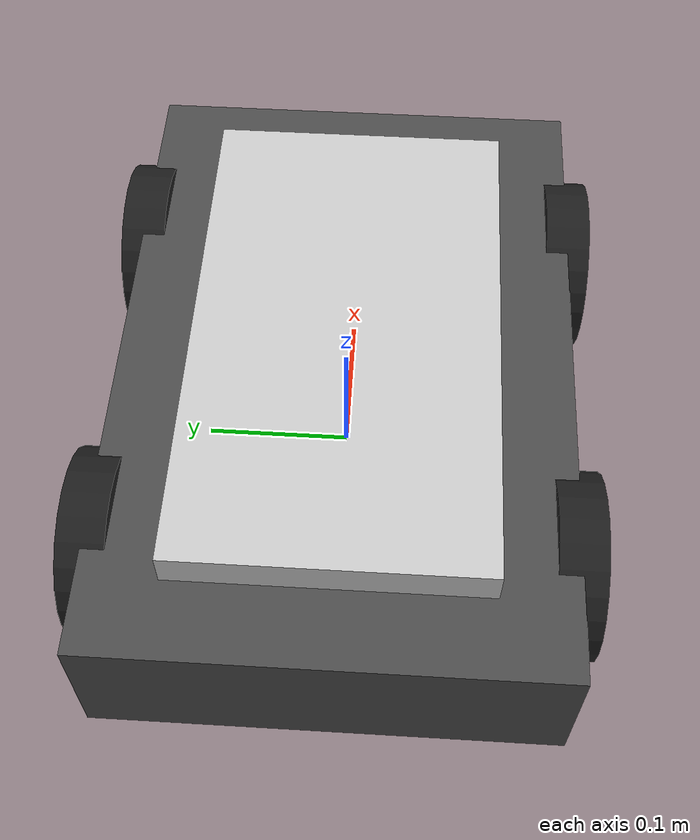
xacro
<?xml version="1.0"?>
<robot xmlns:xacro="http://www.ros.org/wiki/xacro">
    <xacro:property name="base_length" value="0.45" />
    <xacro:property name="base_width" value="0.30" />
    <xacro:property name="base_height" value="0.10"/>
    <xacro:property name="wheel_radius" value="0.06" />
    <xacro:property name="wheel_length" value="0.03"/>
    <xacro:property name="mast_radius" value="0.015" />
    <xacro:property name="mast_length" value="0.25" />
    <xacro:property name="camera_length" value="0.05"/>
    <xacro:property name="camera_width" value="0.05"/>
    <xacro:property name="camera_height" value="0.04"/>

    <link name="base_footprint" />

    <link name="base_link">
        <visual>
            <geometry>
                <box size="0.45 0.30 0.10"/>
            </geometry>
            <origin xyz="0 0 0" rpy="0 0 0"/>
            <material name="dark_gray" />
        </visual>
        <collision>
            <geometry>
                <box size="0.45 0.30 0.10"/>
            </geometry>
            <origin xyz="0 0 0" rpy="0 0 0"/>
        </collision>
        <xacro:box_inertia m="5.0" x="${base_length}" y="${base_width}" z="${base_height}"
                           o_xyz="0 0 ${base_height / 2.0}" o_rpy="0 0 0" />
    </link>

    <xacro:macro name="wheel" params="prefix">
        <link name="${prefix}_wheel">
            <visual>
                <geometry>
                    <cylinder radius="${wheel_radius}" length="${wheel_length}"/>
                </geometry>
                <origin xyz="0 0 0" rpy="${pi/2} 0 0"/>
                <material name="black"/>
            </visual>

            <collision>
                <geometry>
                    <cylinder radius="${wheel_radius}" length="${wheel_length}"/>
                </geometry>
                <origin xyz="0 0 0" rpy="${pi/2} 0 0"/>
            </collision>
            <xacro:cylinder_inertia m="1.0" r="${wheel_radius}" l="${wheel_length}" o_xyz="0 0 0" o_rpy="0 0 0"/>
        </link>
    </xacro:macro>

    <xacro:wheel prefix="left_back" />
    <xacro:wheel prefix="left_front" />
    <xacro:wheel prefix="right_back" />
    <xacro:wheel prefix="right_front" />

    <link name="upper_base_link">
        <visual>
            <geometry>
                <box size="0.35 0.20 0.05"/>
            </geometry>
            <origin xyz="0 0 0" rpy="0 0 0" />
            <material name="light_gray" />
        </visual>
        <collision>
            <geometry>
                <box size="0.35 0.20 0.05"/>
            </geometry>
            <origin xyz="0 0 0" rpy="0 0 0" />
        </collision>
        <xacro:box_inertia m="1.0" x="0.35" y="0.20" z="0.05"
                           o_xyz="0 0 0" o_rpy="0 0 0" />
    </link>

    <joint name="base_joint" type="fixed">
        <parent link="base_footprint"/>
        <child link="base_link"/>
        <origin xyz="0 0 ${wheel_radius}" rpy="0 0 0"/>
    </joint>

    <joint name="base_left_back_joint" type="continuous">
        <parent link="base_link"/>
        <child link="left_back_wheel"/>
        <origin xyz="-0.125 -0.15 0" rpy="0 0 0" />
        <axis xyz="0 1 0" />
    </joint>

    <joint name="base_left_front_joint" type="continuous">
        <parent link="base_link"/>
        <child link="left_front_wheel"/>
        <origin xyz="0.125 -0.15 0" rpy="0 0 0" />
        <axis xyz="0 1 0" />
    </joint>

    <joint name="base_right_back_joint" type="continuous">
        <parent link="base_link"/>
        <child link="right_back_wheel"/>
        <origin xyz="-0.125 0.15 0" rpy="0 0 0" />
        <axis xyz="0 1 0" />
    </joint>

    <joint name="base_right_front_joint" type="continuous">
        <parent link="base_link"/>
        <child link="right_front_wheel"/>
        <origin xyz="0.125 0.15 0" rpy="0 0 0" />
        <axis xyz="0 1 0" />
    </joint>

    <joint name="upper_base_joint" type="fixed">
        <parent link="base_link"/>
        <child link="upper_base_link"/>
        <origin xyz="0 0 0.05" rpy="0 0 0" />

    </joint>

      <!-- ================= Wheel friction tuning ================= -->

    <gazebo reference="left_front_wheel">
        <collision>
            <surface>
                <friction>
                    <ode>
                        <mu>1.0</mu>      <!-- forward -->
                        <mu2>0.2</mu2>    <!-- sideways -->
                        <slip1>0.0</slip1>
                        <slip2>0.1</slip2>
                    </ode>
                </friction>
            </surface>
        </collision>
    </gazebo>

    <gazebo reference="right_front_wheel">
        <collision>
            <surface>
                <friction>
                    <ode>
                        <mu>1.0</mu>      <!-- forward -->
                        <mu2>0.2</mu2>    <!-- sideways -->
                        <slip1>0.0</slip1>
                        <slip2>0.1</slip2>
                    </ode>
                </friction>
            </surface>
        </collision>
    </gazebo>

    <gazebo reference="left_back_wheel">
        <collision>
            <surface>
                <friction>
                    <ode>
                        <mu>1.0</mu>      <!-- forward -->
                        <mu2>0.2</mu2>    <!-- sideways -->
                        <slip1>0.0</slip1>
                        <slip2>0.1</slip2>
                    </ode>
                </friction>
            </surface>
        </collision>
    </gazebo>

    <gazebo reference="right_back_wheel">
        <collision>
            <surface>
                <friction>
                    <ode>
                        <mu>1.0</mu>      <!-- forward -->
                        <mu2>0.2</mu2>    <!-- sideways -->
                        <slip1>0.0</slip1>
                        <slip2>0.1</slip2>
                    </ode>
                </friction>
            </surface>
        </collision>
    </gazebo>

</robot>
